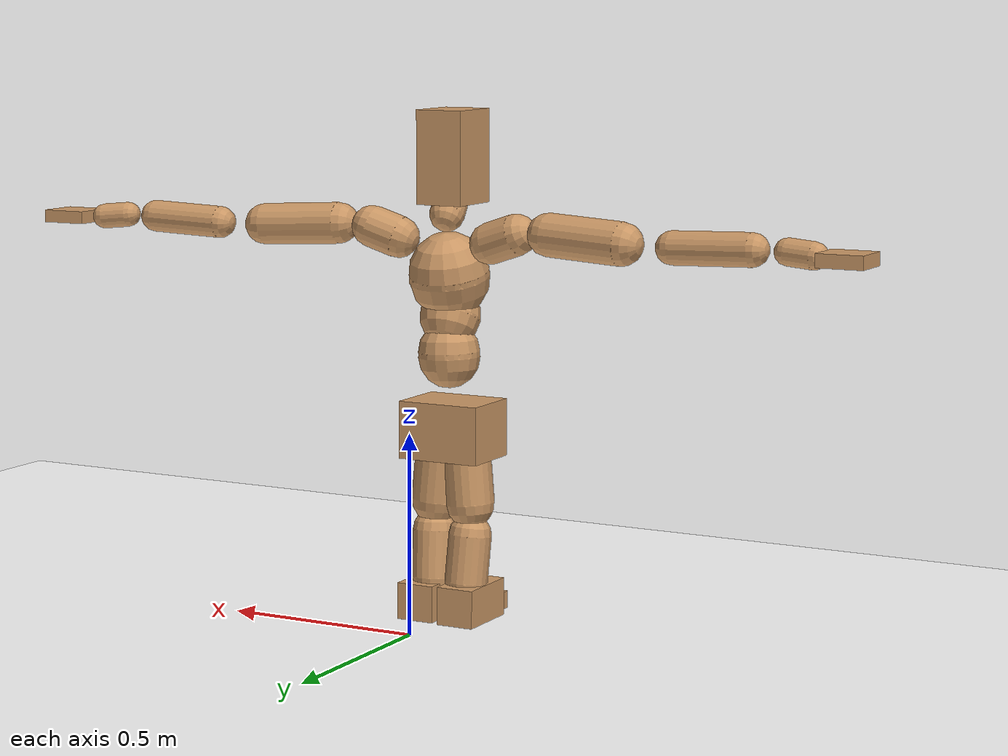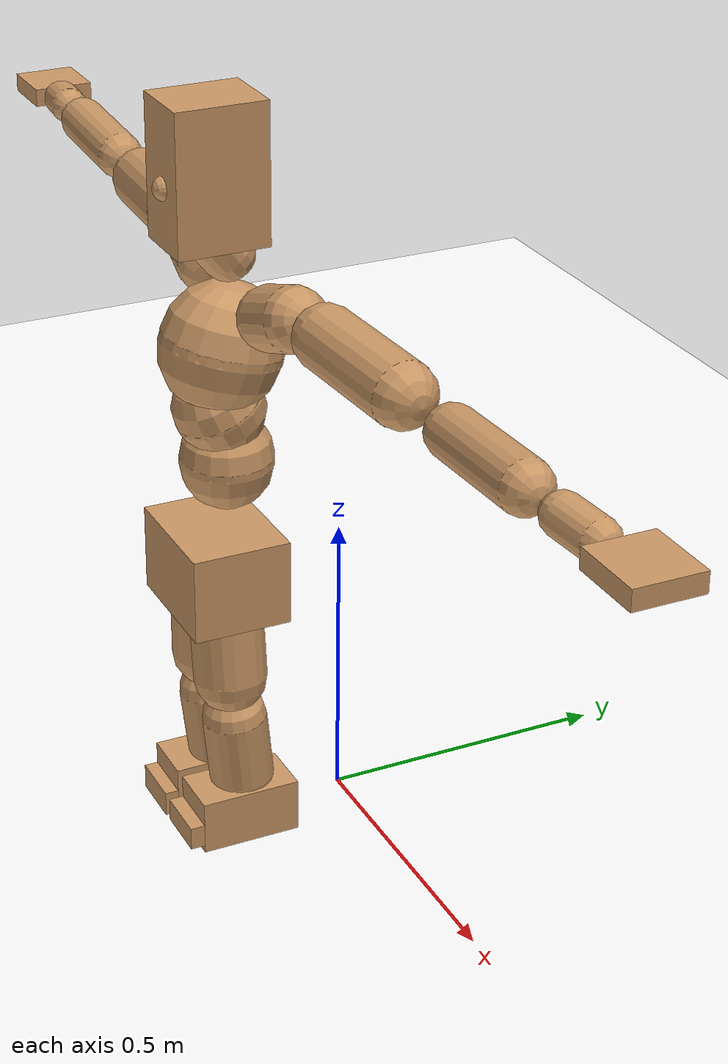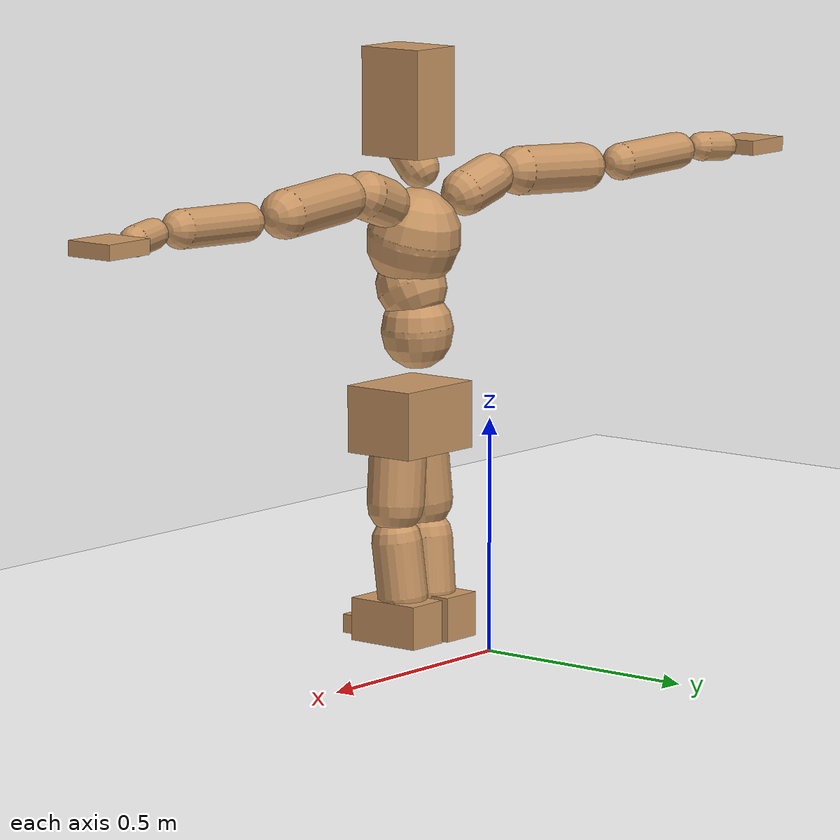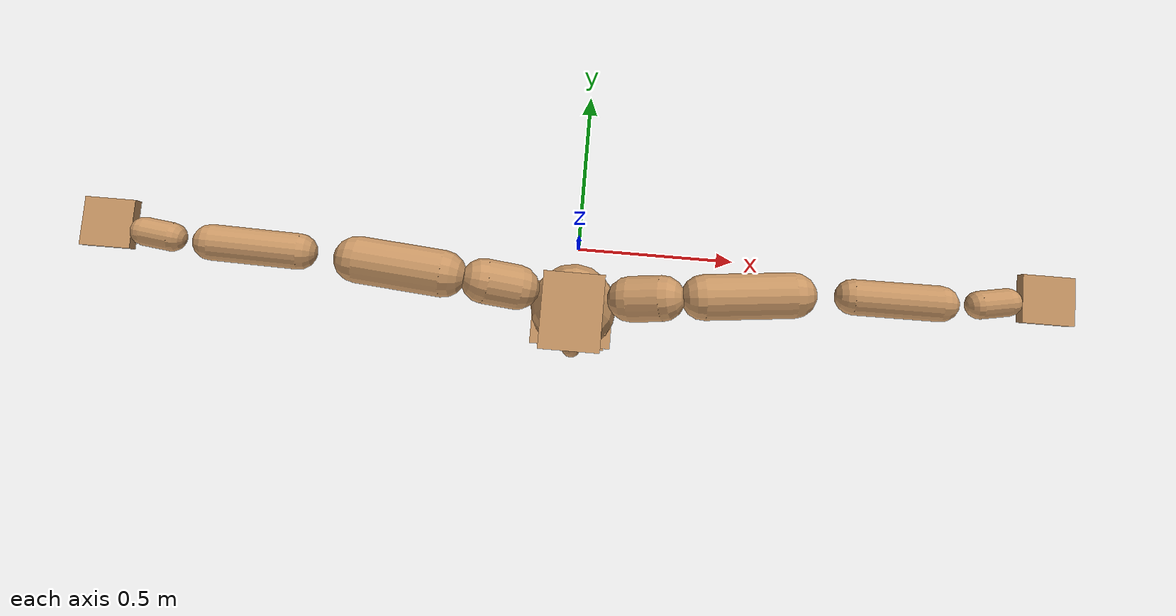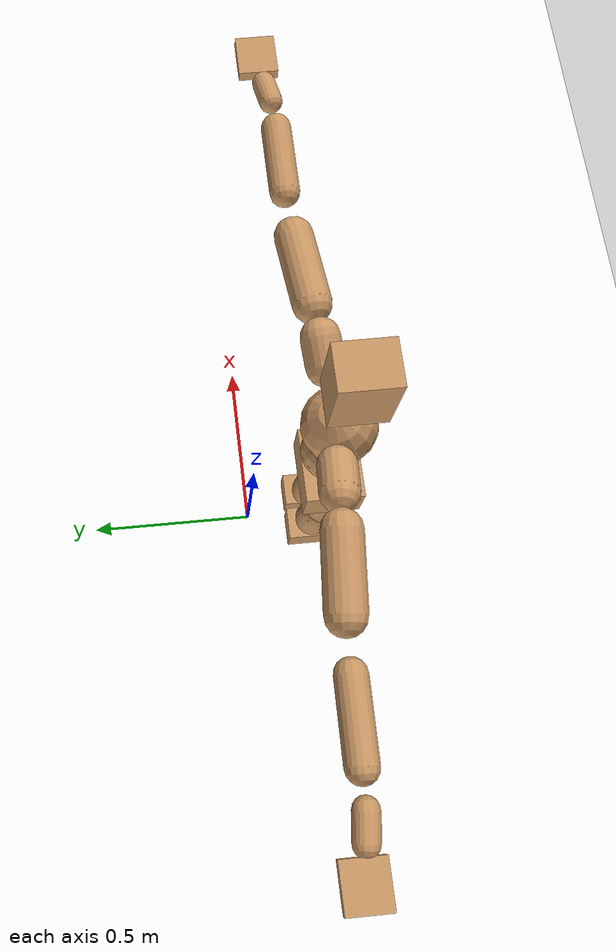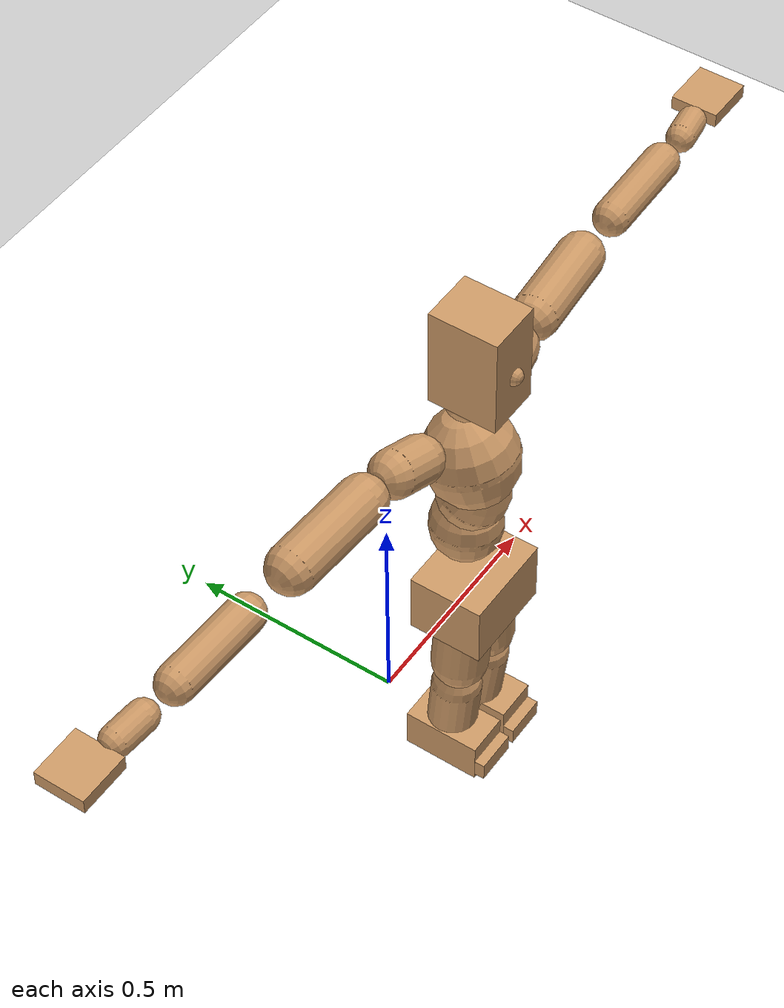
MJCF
<mujoco model="humanoid">
  <option integrator="implicitfast" />

  <visual>
    <global offwidth="1280" offheight="960" />
    <headlight active="1" ambient="0.34 0.34 0.34" diffuse="0.5 0.5 0.5" />
  </visual>

  <default>
    <joint damping="2" stiffness="2" armature="0.01" limited="true" solimplimit="0 .99 .01" />
    <geom condim="1" friction="0.7 0.005 0.0001" solimp=".99 .99 .003" solref="0.015 1" margin="0.001" rgba="0.8 0.6 .4 1" />
    <default class="smplcontact">
      <geom condim="3" friction="1. 0.005 0.0001" solref="0.015 1" solimp="0.98 0.98 0.001" priority="1" />
    </default>
    <default class="stiff_medium">
      <joint stiffness="10" />
    </default>
    <default class="stiff_medium_higher">
      <joint stiffness="50" />
    </default>
    <default class="stiff_high">
      <joint stiffness="100" />
    </default>
  </default>

  <asset>
    <texture type="skybox" builtin="gradient" rgb1="0.99 0.99 0.99" rgb2="0.608 0.828 0.892" width="100" />
    <texture builtin="flat" height="1278" mark="cross" markrgb="1 1 1" name="texgeom" random="0.01" rgb1="0.8 0.6 0.4" rgb2="0.8 0.6 0.4" type="cube" width="127" />
    <texture name="texplane" type="2d" builtin="checker" markrgb="1 1 1" rgb1="0.756 0.772 0.76" rgb2="0.6 0.6 0.6" width="100" height="100" />
    <material name="MatPlane" reflectance="0.5" texture="texplane" texrepeat="1 1" texuniform="true" />
    <material name="geom" texture="texgeom" texuniform="true" />
  </asset>

  <worldbody>
    <light name="tracking_light" pos="0 0 7" dir="0 0 -1" directional="true" cutoff="100" exponent="1" diffuse="1 1 1" specular="0.1 0.1 0.1" mode="trackcom" />
    <camera name="back" pos="0 3 2.4" xyaxes="-1 0 0 0 -1 2" mode="trackcom" />
    <camera name="side" pos="-3 0 2.4" xyaxes="0 -1 0 1 0 2" mode="trackcom" />
    <camera name="front_side" pos="-2.8 -2.8 0.8" xyaxes="0.5 -0.5 0 0.1 0.1 1" mode="trackcom" />
    <geom condim="3" name="floor" pos="0 0 0" rgba="1 1 1 1" size="100 100 .2" type="plane" material="MatPlane" />
    <body name="Pelvis" pos="-0.0018 -0.2233 0.49225" euler="90 0 0">
      <site name="Pelvis" size="0.01" />
      <freejoint name="Pelvis" />
      <geom type="box" pos="-0.0000 -0.0121 -0.0055" size="0.1069 0.0722 0.083" quat="1.0000 0.0000 0.0000 0.0000" density="3165.830099" name="Pelvis" />
      <body name="L_Hip" pos="0.03475 -0.0457 -0.0034">
        <joint name="L_Hip_x" type="hinge" pos="0 0 0" axis="1 0 0" stiffness="3.3281267346938783" range="-160.0 22.92" class="stiff_medium" damping="3.7390012674465343" armature="0.001866933509102773"/>
        <joint name="L_Hip_y" type="hinge" pos="0 0 0" axis="0 1 0" stiffness="3.37791" range="-70.0 70.0" class="stiff_medium" damping="4.005630916019097" armature="0.004750001934737157"/>
        <joint name="L_Hip_z" type="hinge" pos="0 0 0" axis="0 0 1" stiffness="3.3736477551020405" range="-28.65 90.0" class="stiff_medium" damping="2.5063841398267135" armature="0.0018620679787552058"/>
        <geom type="capsule" density="2040.816327" fromto="0.00345 -0.0375 -0.00045 0.0137 -0.1501 -0.0018" size="0.0615" name="L_Hip" />
        <body name="L_Knee" pos="0.01715 -0.1876 -0.00225">
          <joint name="L_Knee_x" type="hinge" pos="0 0 0" axis="1 0 0" range="-5.16 171.89" damping="2.234113816312469" armature="0.0021582150618351227" stiffness="0.7227130408163265"/>
          <joint name="L_Knee_y" type="hinge" pos="0 0 0" axis="0 1 0" range="-4.58 6.88" damping="3.459125898584501" armature="0.005422024016158547" stiffness="0.6896382205818496"/>
          <joint name="L_Knee_z" type="hinge" pos="0 0 0" axis="0 0 1" range="-6.88 4.58" damping="2.2483389527020097" armature="0.002131189565119331" stiffness="0.7412274770408163"/>
          <geom type="capsule" density="1234.567901" fromto="-0.00135 -0.0398 -0.00435 -0.00545 -0.1592 -0.0175" size="0.0541" name="L_Knee" />
          <body name="L_Ankle" pos="-0.0068 -0.199 -0.02185">
            <joint name="L_Ankle_x" type="hinge" pos="0 0 0" axis="1 0 0" range="-45.84 45.84" class="stiff_medium" damping="3.0200432285450947" armature="0.005067033945711711" stiffness="5.0"/>
            <joint name="L_Ankle_y" type="hinge" pos="0 0 0" axis="0 1 0" range="-74.48 22.92" class="stiff_medium" damping="1.5371232923821347" armature="0.005250551146630429" stiffness="5.0"/>
            <joint name="L_Ankle_z" type="hinge" pos="0 0 0" axis="0 0 1" range="-4.58 4.58" class="stiff_medium" damping="3.4078637028280743" armature="0.006451963898362818" stiffness="5.0"/>
            <geom type="box" pos="0.01165 -0.01195 0.0121" size="0.0483 0.0464 0.085" quat="1.0000 0.0000 0.0000 0.0000" density="449.071558" name="L_Ankle" class="smplcontact" />
            <body name="L_Toe" pos="0.0132 -0.0279 0.05965">
              <joint name="L_Toe_x" type="hinge" pos="0 0 0" axis="1 0 0" range="-91.67 22.92" armature="0.00714859066429149" damping="1.195708213929426" stiffness="1.0"/>
              <joint name="L_Toe_y" type="hinge" pos="0 0 0" axis="0 1 0" range="-4.58 4.58" armature="0.007990951927082678" damping="1.2641955487251706" stiffness="1.0"/>
              <joint name="L_Toe_z" type="hinge" pos="0 0 0" axis="0 0 1" range="-4.58 4.58" armature="0.00969416106055905" damping="1.392419553192144" stiffness="1.0"/>
              <geom type="box" pos="-0.0015 0.00275 0.0124" size="0.0478 0.02 0.0496" quat="1.0000 0.0000 0.0000 0.0000" density="423.206892" name="L_Toe" class="smplcontact" />
            </body>
          </body>
        </body>
      </body>
      <body name="R_Hip" pos="-0.03385 -0.04525 -0.00215">
        <joint name="R_Hip_x" type="hinge" pos="0 0 0" axis="1 0 0" stiffness="3.3281267346938783" range="-160.0 22.92" class="stiff_medium" damping="3.7390012674465343" armature="0.001866933509102773"/>
        <joint name="R_Hip_y" type="hinge" pos="0 0 0" axis="0 1 0" stiffness="3.37791" range="-70.0 70.0" class="stiff_medium" damping="4.005630916019097" armature="0.004750001934737157"/>
        <joint name="R_Hip_z" type="hinge" pos="0 0 0" axis="0 0 1" stiffness="3.3736477551020405" range="-90.0 28.65" class="stiff_medium" damping="2.5063841398267135" armature="0.0018620679787552058"/>
        <geom type="capsule" density="2040.816327" fromto="-0.00385 -0.03825 -0.0009 -0.0153 -0.15305 -0.00355" size="0.0606" name="R_Hip" />
        <body name="R_Knee" pos="-0.01915 -0.1913 -0.00445">
          <joint name="R_Knee_x" type="hinge" pos="0 0 0" axis="1 0 0" range="-5.16 171.89" damping="2.234113816312469" armature="0.0021582150618351227" stiffness="0.7227130408163265"/>
          <joint name="R_Knee_y" type="hinge" pos="0 0 0" axis="0 1 0" range="-6.88 4.58" damping="3.459125898584501" armature="0.005422024016158547" stiffness="0.6896382205818496"/>
          <joint name="R_Knee_z" type="hinge" pos="0 0 0" axis="0 0 1" range="-4.58 6.88" damping="2.2483389527020097" armature="0.002131189565119331" stiffness="0.7412274770408163"/>
          <geom type="capsule" density="1234.567901" fromto="0.0016 -0.03985 -0.00425 0.0063 -0.15935 -0.0169" size="0.0541" name="R_Knee" />
          <body name="R_Ankle" pos="0.0079 -0.1992 -0.02115">
            <joint name="R_Ankle_x" type="hinge" pos="0 0 0" axis="1 0 0" range="-45.84 45.84" class="stiff_medium" damping="3.0200432285450947" armature="0.005067033945711711" stiffness="5.0"/>
            <joint name="R_Ankle_y" type="hinge" pos="0 0 0" axis="0 1 0" range="-22.92 74.48" class="stiff_medium" damping="1.5371232923821347" armature="0.005250551146630429" stiffness="5.0"/>
            <joint name="R_Ankle_z" type="hinge" pos="0 0 0" axis="0 0 1" range="-4.58 4.58" class="stiff_medium" damping="3.4078637028280743" armature="0.006451963898362818" stiffness="5.0"/>
            <geom type="box" pos="-0.0106 -0.0087 0.0128" size="0.0483 0.0478 0.0865" quat="1.0000 0.0000 0.0000 0.0000" density="434.700981" name="R_Ankle" class="smplcontact" />
            <body name="R_Toe" pos="-0.0127 -0.02405 0.06165">
              <joint name="R_Toe_x" type="hinge" pos="0 0 0" axis="1 0 0" range="-91.67 22.92" armature="0.00714859066429149" damping="1.195708213929426" stiffness="1.0"/>
              <joint name="R_Toe_y" type="hinge" pos="0 0 0" axis="0 1 0" range="-4.58 4.58" armature="0.007990951927082678" damping="1.2641955487251706" stiffness="1.0"/>
              <joint name="R_Toe_z" type="hinge" pos="0 0 0" axis="0 0 1" range="-4.58 4.58" armature="0.00969416106055905" damping="1.392419553192144" stiffness="1.0"/>
              <geom type="box" pos="0.0021 0.00225 0.01135" size="0.0479 0.0216 0.0493" quat="1.0000 0.0000 0.0000 0.0000" density="407.384095" name="R_Toe" class="smplcontact" />
            </body>
          </body>
        </body>
      </body>
      <body name="Torso" pos="-0.0025 0.109 -0.0267">
        <joint name="Torso_x" type="hinge" pos="0 0 0" axis="1 0 0" range="-25.78 57.3" class="stiff_medium" damping="16.94478917737133" armature="0.011576079564418838" stiffness="11.023723673469387"/>
        <joint name="Torso_y" type="hinge" pos="0 0 0" axis="0 1 0" range="-57.3 57.3" class="stiff_high" damping="29.11508756713538" armature="0.01937626790595332" stiffness="109.37198124999998"/>
        <joint name="Torso_z" type="hinge" pos="0 0 0" axis="0 0 1" range="-34.38 34.38" class="stiff_high" damping="24.640771515328712" armature="0.014228244849331773" stiffness="106.68350652173912"/>
        <geom type="capsule" density="2040.816327" fromto="0.0025 0.0608 0.0005 0.003 0.0743 0.0006" size="0.0769" name="Torso" />
        <body name="Spine" pos="0.0055 0.1352 0.0011">
          <joint name="Spine_x" type="hinge" pos="0 0 0" axis="1 0 0" stiffness="11.23382224489796" range="-25.78 57.3" class="stiff_medium" damping="17.411062309630793" armature="0.01199334905851537"/>
          <joint name="Spine_y" type="hinge" pos="0 0 0" axis="0 1 0" stiffness="11.67224088888889" range="-57.3 57.3" class="stiff_high" damping="12.051053820080998" armature="0.019440876268553408"/>
          <joint name="Spine_z" type="hinge" pos="0 0 0" axis="0 0 1" stiffness="22.9563125" range="-34.38 34.38" class="stiff_high" damping="16.317554444807215" armature="0.016109257231005373"/>
          <geom type="capsule" density="2040.816327" fromto="0.0007 0.0238 0.0114 0.0008 0.0291 0.014" size="0.0755" name="Spine" />
          <body name="Chest" pos="0.0015 0.0529 0.0254">
            <joint name="Chest_x" type="hinge" pos="0 0 0" axis="1 0 0" stiffness="11.776115531914895" range="-25.78 57.3" class="stiff_medium" damping="18.021102303759772" armature="0.012256829035287799"/>
            <joint name="Chest_y" type="hinge" pos="0 0 0" axis="0 1 0" stiffness="13.448267333333334" range="-57.3 57.3" class="stiff_high" damping="12.937740431789003" armature="0.019447803587290643"/>
            <joint name="Chest_z" type="hinge" pos="0 0 0" axis="0 0 1" stiffness="23.267014782608697" range="-34.38 34.38" class="stiff_high" damping="16.847528832624963" armature="0.016943348915127984"/>
            <geom type="capsule" density="2040.816327" fromto="-0.0009 0.0682 -0.0173 -0.001 0.0833 -0.0212" size="0.1002" name="Chest" />
            <body name="Neck" pos="-0.0028 0.2139 -0.0429">
              <joint name="Neck_x" type="hinge" pos="0 0 0" axis="1 0 0" range="-28.65 57.3" class="stiff_medium_higher" damping="9.999999999999998" armature="0.009999999999999995" stiffness="50.0"/>
              <joint name="Neck_y" type="hinge" pos="0 0 0" axis="0 1 0" range="-40.11 40.11" class="stiff_medium_higher" damping="10.0" armature="0.01" stiffness="50.0"/>
              <joint name="Neck_z" type="hinge" pos="0 0 0" axis="0 0 1" range="-40.11 40.11" class="stiff_medium_higher" damping="9.999999999999996" armature="0.009999999999999993" stiffness="50.0"/>
              <geom type="capsule" density="1000" fromto="0.001 0.013 0.0103 0.0041 0.052 0.0411" size="0.0436" name="Neck" />
              <body name="Head" pos="0.0052 0.065 0.0513">
                <joint name="Head_x" type="hinge" pos="0 0 0" axis="1 0 0" range="-28.65 57.3" class="stiff_medium_higher" damping="1.9999999999999978" armature="0.009999999999999978" stiffness="50.0"/>
                <joint name="Head_y" type="hinge" pos="0 0 0" axis="0 1 0" range="-40.11 40.11" class="stiff_medium_higher" damping="2.0" armature="0.01" stiffness="50.0"/>
                <joint name="Head_z" type="hinge" pos="0 0 0" axis="0 0 1" range="-40.11 40.11" class="stiff_medium_higher" damping="1.9999999999999982" armature="0.009999999999999983" stiffness="50.0"/>
                <geom type="box" pos="-0.0042 0.0876 -0.0116" size="0.0606 0.1154 0.076" quat="1.0000 0.0000 0.0000 0.0000" density="1018.069894" name="Head" />
                <geom type="capsule" name="nose" size="0.02 0.01" pos="0 0.07 0.05" quat="1 0 0 0" mass="0" contype="0" conaffinity="0" />
              </body>
            </body>
            <body name="L_Thorax" pos="0.10244 0.15821 -0.04433">
              <joint name="L_Thorax_x" type="hinge" pos="0 0 0" axis="1 0 0" range="-10.89 4.58" class="stiff_medium_higher" damping="31.589735797957864" armature="0.016223873504270316" stiffness="76.88603214285715"/>
              <joint name="L_Thorax_y" type="hinge" pos="0 0 0" axis="0 1 0" range="-28.65 17.19" class="stiff_medium_higher" damping="34.89989559971406" armature="0.01967496307175568" stiffness="77.38278265306123"/>
              <joint name="L_Thorax_z" type="hinge" pos="0 0 0" axis="0 0 1" range="-31.51 40.11" class="stiff_medium_higher" damping="34.901462278801546" armature="0.019678125977203684" stiffness="77.37729132653061"/>
              <geom type="capsule" density="1000" fromto="0.02366 0.00793 -0.00234 0.09464 0.03172 -0.00923" size="0.0521" name="L_Thorax" />
              <body name="L_Shoulder" pos="0.1183 0.03965 -0.01157">
                <joint name="L_Shoulder_x" type="hinge" pos="0 0 0" axis="1 0 0" range="-97.4 97.4" class="stiff_medium" damping="9.029989056679021" armature="0.014800063709014101" stiffness="15.304120000000001"/>
                <joint name="L_Shoulder_y" type="hinge" pos="0 0 0" axis="0 1 0" range="-108.86 80.21" class="stiff_medium" damping="10.416659800941959" armature="0.01952172196852091" stiffness="15.439610408163267"/>
                <joint name="L_Shoulder_z" type="hinge" pos="0 0 0" axis="0 0 1" range="-97.4 85.94" class="stiff_medium" damping="10.414978319288076" armature="0.019525527681653106" stiffness="15.431617857142857"/>
                <geom type="capsule" density="1000" fromto="0.06747 -0.00338 -0.00715 0.27001 -0.01326 -0.0286" size="0.0517" name="L_Shoulder" />
                <body name="L_Elbow" pos="0.33748 -0.01664 -0.03575">
                  <joint name="L_Elbow_x" type="hinge" pos="0 0 0" axis="1 0 0" range="-17.19 4.58" damping="6.893935965131517" armature="0.0126553540530317" stiffness="3.0043475918367353"/>
                  <joint name="L_Elbow_y" type="hinge" pos="0 0 0" axis="0 1 0" range="-180.0 17.19" damping="8.400044856786579" armature="0.01878090142426551" stiffness="3.005638632653061"/>
                  <joint name="L_Elbow_z" type="hinge" pos="0 0 0" axis="0 0 1" range="-100.84 4.58" damping="8.401427491655669" armature="0.018800821954664856" stiffness="3.003442469387755"/>
                  <geom type="capsule" density="1000" fromto="0.06474 0.00234 -0.00026 0.25922 0.00936 -0.00117" size="0.0405" name="L_Elbow" />
                  <body name="L_Wrist" pos="0.32396 0.0117 -0.00156">
                    <joint name="L_Wrist_x" type="hinge" pos="0 0 0" axis="1 0 0" range="-180.0 22.92" armature="0.012290327941728303" damping="2.5957833940279276" stiffness="2.7412171020408165"/>
                    <joint name="L_Wrist_y" type="hinge" pos="0 0 0" axis="0 1 0" range="-17.19 17.19" armature="0.016530608092611625" damping="3.02180641276124" stiffness="2.7619413469387752"/>
                    <joint name="L_Wrist_z" type="hinge" pos="0 0 0" axis="0 0 1" range="-22.92 22.92" armature="0.016761001490566044" damping="3.038183618728785" stiffness="2.7535823877551024"/>
                    <geom type="capsule" density="1000" fromto="0.02184 -0.00208 -0.0039 0.08736 -0.00845 -0.0156" size="0.0318" name="L_Wrist" class="smplcontact" />
                    <body name="L_Hand" pos="0.1092 -0.01066 -0.01937">
                      <joint name="L_Hand_x" type="hinge" pos="0 0 0" axis="1 0 0" range="-17.19 17.19" armature="0.01030060650759187" damping="2.314371487887753" stiffness="2.5999999999999996"/>
                      <joint name="L_Hand_y" type="hinge" pos="0 0 0" axis="0 1 0" range="-51.57 51.57" armature="0.013635420978089964" damping="2.662784052191762" stiffness="2.5999999999999996"/>
                      <joint name="L_Hand_z" type="hinge" pos="0 0 0" axis="0 0 1" range="-91.67 91.67" armature="0.01452436133904224" damping="2.7482117633657643" stiffness="2.5999999999999996"/>
                      <geom type="box" pos="0.06409 0.0013 -0.00754" size="0.0585 0.0158 0.0538" quat="1.0000 0.0000 0.0000 0.0000" density="400.552564" name="L_Hand" class="smplcontact" />
                    </body>
                  </body>
                </body>
              </body>
            </body>
            <body name="R_Thorax" pos="-0.10634 0.15444 -0.05018">
              <joint name="R_Thorax_x" type="hinge" pos="0 0 0" axis="1 0 0" range="-10.89 4.58" class="stiff_medium_higher" damping="31.589735797957864" armature="0.016223873504270316" stiffness="76.88603214285715"/>
              <joint name="R_Thorax_y" type="hinge" pos="0 0 0" axis="0 1 0" range="-17.19 28.65" class="stiff_medium_higher" damping="34.89989559971406" armature="0.01967496307175568" stiffness="77.38278265306123"/>
              <joint name="R_Thorax_z" type="hinge" pos="0 0 0" axis="0 0 1" range="-40.11 31.51" class="stiff_medium_higher" damping="34.901462278801546" armature="0.019678125977203684" stiffness="77.37729132653061"/>
              <geom type="capsule" density="1000" fromto="-0.02496 0.00845 -0.00234 -0.09984 0.0338 -0.00949" size="0.0511" name="R_Thorax" />
              <body name="R_Shoulder" pos="-0.1248 0.04238 -0.01183">
                <joint name="R_Shoulder_x" type="hinge" pos="0 0 0" axis="1 0 0" range="-97.4 97.4" class="stiff_medium" damping="9.029989056679021" armature="0.014800063709014101" stiffness="15.304120000000001"/>
                <joint name="R_Shoulder_y" type="hinge" pos="0 0 0" axis="0 1 0" range="-80.21 108.86" class="stiff_medium" damping="10.416659800941959" armature="0.01952172196852091" stiffness="15.439610408163267"/>
                <joint name="R_Shoulder_z" type="hinge" pos="0 0 0" axis="0 0 1" range="-85.94 97.4" class="stiff_medium" damping="10.414978319288076" armature="0.019525527681653106" stiffness="15.431617857142857"/>
                <geom type="capsule" density="1000" fromto="-0.06591 -0.00351 -0.00559 -0.2639 -0.01391 -0.02223" size="0.0531" name="R_Shoulder" />
                <body name="R_Elbow" pos="-0.32981 -0.01729 -0.02782">
                  <joint name="R_Elbow_x" type="hinge" pos="0 0 0" axis="1 0 0" range="-17.19 4.58" damping="6.893935965131517" armature="0.0126553540530317" stiffness="3.0043475918367353"/>
                  <joint name="R_Elbow_y" type="hinge" pos="0 0 0" axis="0 1 0" range="-17.19 180.0" damping="8.400044856786579" armature="0.01878090142426551" stiffness="3.005638632653061"/>
                  <joint name="R_Elbow_z" type="hinge" pos="0 0 0" axis="0 0 1" range="-4.58 100.84" damping="8.401427491655669" armature="0.018800821954664856" stiffness="3.003442469387755"/>
                  <geom type="capsule" density="1000" fromto="-0.06643 0.00208 -0.00143 -0.26546 0.00806 -0.00572" size="0.0408" name="R_Elbow" />
                  <body name="R_Wrist" pos="-0.33189 0.01014 -0.00728">
                    <joint name="R_Wrist_x" type="hinge" pos="0 0 0" axis="1 0 0" range="-180.0 22.92" armature="0.012290327941728303" damping="2.5957833940279276" stiffness="2.7412171020408165"/>
                    <joint name="R_Wrist_y" type="hinge" pos="0 0 0" axis="0 1 0" range="-17.19 17.19" armature="0.016530608092611625" damping="3.02180641276124" stiffness="2.7619413469387752"/>
                    <joint name="R_Wrist_z" type="hinge" pos="0 0 0" axis="0 0 1" range="-22.92 22.92" armature="0.016761001490566044" damping="3.038183618728785" stiffness="2.7535823877551024"/>
                    <geom type="capsule" density="1000" fromto="-0.02197 -0.00156 -0.00273 -0.08801 -0.00637 -0.01079" size="0.0326" name="R_Wrist" class="smplcontact" />
                    <body name="R_Hand" pos="-0.10998 -0.00793 -0.01339">
                      <joint name="R_Hand_x" type="hinge" pos="0 0 0" axis="1 0 0" range="-17.19 17.19" armature="0.01030060650759187" damping="2.314371487887753" stiffness="2.5999999999999996"/>
                      <joint name="R_Hand_y" type="hinge" pos="0 0 0" axis="0 1 0" range="-51.57 51.57" armature="0.013635420978089964" damping="2.662784052191762" stiffness="2.5999999999999996"/>
                      <joint name="R_Hand_z" type="hinge" pos="0 0 0" axis="0 0 1" range="-91.67 91.67" armature="0.01452436133904224" damping="2.7482117633657643" stiffness="2.5999999999999996"/>
                      <geom type="box" pos="-0.06006 -0.00117 -0.01027" size="0.0569 0.0164 0.0546" quat="1.0000 0.0000 0.0000 0.0000" density="403.679611" name="R_Hand" class="smplcontact" />
                    </body>
                  </body>
                </body>
              </body>
            </body>
          </body>
        </body>
      </body>
    </body>
  </worldbody>
  <actuator>
    <general name="L_Hip_x" joint="L_Hip_x" biastype="affine" gainprm="95.62708680036044" biasprm="-71.66280919852072 -59.9062812244898 -0.4985335023262046" ctrllimited="true" ctrlrange="-1 1" forcerange="-119.8125624489796 119.8125624489796" />
    <general name="L_Hip_y" joint="L_Hip_y" biastype="affine" gainprm="74.28412068341248" biasprm="0.0 -60.80238 -0.8011261832038195" ctrllimited="true" ctrlrange="-1 1" forcerange="-121.60476 121.60476" />
    <general name="L_Hip_z" joint="L_Hip_z" biastype="affine" gainprm="62.8763546966517" biasprm="32.51128833240271 -60.72565959183673 -0.5012768279653427" ctrllimited="true" ctrlrange="-1 1" forcerange="-121.45131918367346 121.45131918367346" />
    <general name="L_Knee_x" joint="L_Knee_x" biastype="affine" gainprm="100.49667747567948" biasprm="94.63886492809961 -65.04417367346939 -0.5585284540781172" ctrllimited="true" ctrlrange="-1 1" forcerange="-130.08834734693878 130.08834734693878" />
    <general name="L_Knee_y" joint="L_Knee_y" biastype="affine" gainprm="6.207201182643047" biasprm="1.2457733612634387 -62.06743985236647 -0.8647814746461252" ctrllimited="true" ctrlrange="-1 1" forcerange="-124.13487970473294 124.13487970473294" />
    <general name="L_Knee_z" joint="L_Knee_z" biastype="affine" gainprm="6.671538692002082" biasprm="-1.3389650079934372 -66.71047293367346 -0.5620847381755024" ctrllimited="true" ctrlrange="-1 1" forcerange="-133.42094586734692 133.42094586734692" />
    <general name="L_Ankle_x" joint="L_Ankle_x" biastype="affine" gainprm="36.002651810139035" biasprm="0.0 -45.0 -1.0066810761816982" ctrllimited="true" ctrlrange="-1 1" forcerange="-90.0 90.0" />
    <general name="L_Ankle_y" joint="L_Ankle_y" biastype="affine" gainprm="38.24889055745574" biasprm="-20.24756465238622 -45.0 -1.0247488615880898" ctrllimited="true" ctrlrange="-1 1" forcerange="-90.0 90.0" />
    <general name="L_Ankle_z" joint="L_Ankle_z" biastype="affine" gainprm="3.5971235883603128" biasprm="0.0 -45.0 -1.135954567609358" ctrllimited="true" ctrlrange="-1 1" forcerange="-90.0 90.0" />
    <general name="L_Toe_x" joint="L_Toe_x" biastype="affine" gainprm="35.99951021748544" biasprm="-21.598449493429825 -36.0 -0.4782832855717704" ctrllimited="true" ctrlrange="-1 1" forcerange="-72.0 72.0" />
    <general name="L_Toe_y" joint="L_Toe_y" biastype="affine" gainprm="2.8776988706882505" biasprm="0.0 -36.0 -0.5056782194900683" ctrllimited="true" ctrlrange="-1 1" forcerange="-72.0 72.0" />
    <general name="L_Toe_z" joint="L_Toe_z" biastype="affine" gainprm="2.8776988706882505" biasprm="0.0 -36.0 -0.5569678212768576" ctrllimited="true" ctrlrange="-1 1" forcerange="-72.0 72.0" />
    <general name="R_Hip_x" joint="R_Hip_x" biastype="affine" gainprm="95.62708680036044" biasprm="-71.66280919852072 -59.9062812244898 -0.4985335023262046" ctrllimited="true" ctrlrange="-1 1" forcerange="-119.8125624489796 119.8125624489796" />
    <general name="R_Hip_y" joint="R_Hip_y" biastype="affine" gainprm="74.28412068341248" biasprm="0.0 -60.80238 -0.8011261832038195" ctrllimited="true" ctrlrange="-1 1" forcerange="-121.60476 121.60476" />
    <general name="R_Hip_z" joint="R_Hip_z" biastype="affine" gainprm="62.8763546966517" biasprm="-32.51128833240271 -60.72565959183673 -0.5012768279653427" ctrllimited="true" ctrlrange="-1 1" forcerange="-121.45131918367346 121.45131918367346" />
    <general name="R_Knee_x" joint="R_Knee_x" biastype="affine" gainprm="100.49667747567948" biasprm="94.63886492809961 -65.04417367346939 -0.5585284540781172" ctrllimited="true" ctrlrange="-1 1" forcerange="-130.08834734693878 130.08834734693878" />
    <general name="R_Knee_y" joint="R_Knee_y" biastype="affine" gainprm="6.207201182643047" biasprm="-1.2457733612634387 -62.06743985236647 -0.8647814746461252" ctrllimited="true" ctrlrange="-1 1" forcerange="-124.13487970473294 124.13487970473294" />
    <general name="R_Knee_z" joint="R_Knee_z" biastype="affine" gainprm="6.671538692002082" biasprm="1.3389650079934372 -66.71047293367346 -0.5620847381755024" ctrllimited="true" ctrlrange="-1 1" forcerange="-133.42094586734692 133.42094586734692" />
    <general name="R_Ankle_x" joint="R_Ankle_x" biastype="affine" gainprm="36.002651810139035" biasprm="0.0 -45.0 -1.0066810761816982" ctrllimited="true" ctrlrange="-1 1" forcerange="-90.0 90.0" />
    <general name="R_Ankle_y" joint="R_Ankle_y" biastype="affine" gainprm="38.24889055745574" biasprm="20.24756465238622 -45.0 -1.0247488615880898" ctrllimited="true" ctrlrange="-1 1" forcerange="-90.0 90.0" />
    <general name="R_Ankle_z" joint="R_Ankle_z" biastype="affine" gainprm="3.5971235883603128" biasprm="0.0 -45.0 -1.135954567609358" ctrllimited="true" ctrlrange="-1 1" forcerange="-90.0 90.0" />
    <general name="R_Toe_x" joint="R_Toe_x" biastype="affine" gainprm="35.99951021748544" biasprm="-21.598449493429825 -36.0 -0.4782832855717704" ctrllimited="true" ctrlrange="-1 1" forcerange="-72.0 72.0" />
    <general name="R_Toe_y" joint="R_Toe_y" biastype="affine" gainprm="2.8776988706882505" biasprm="0.0 -36.0 -0.5056782194900683" ctrllimited="true" ctrlrange="-1 1" forcerange="-72.0 72.0" />
    <general name="R_Toe_z" joint="R_Toe_z" biastype="affine" gainprm="2.8776988706882505" biasprm="0.0 -36.0 -0.5569678212768576" ctrllimited="true" ctrlrange="-1 1" forcerange="-72.0 72.0" />
    <general name="Torso_x" joint="Torso_x" biastype="affine" gainprm="191.81537709933156" biasprm="72.77347961207185 -264.5693681632653 -4.518610447299022" ctrllimited="true" ctrlrange="-1 1" forcerange="-396.85405224489796 396.85405224489796" />
    <general name="Torso_y" joint="Torso_y" biastype="affine" gainprm="262.51209058192023" biasprm="0.0 -262.492755 -5.823017513427076" ctrllimited="true" ctrlrange="-1 1" forcerange="-393.7391324999999 393.7391324999999" />
    <general name="Torso_z" joint="Torso_z" biastype="affine" gainprm="153.63556556747483" biasprm="0.0 -256.0404156521739 -4.928154303065742" ctrllimited="true" ctrlrange="-1 1" forcerange="-384.0606234782608 384.0606234782608" />
    <general name="Spine_x" joint="Spine_x" biastype="affine" gainprm="195.47114151254812" biasprm="74.16045234082229 -269.61173387755105 -4.642949949234878" ctrllimited="true" ctrlrange="-1 1" forcerange="-404.41760081632657 404.41760081632657" />
    <general name="Spine_y" joint="Spine_y" biastype="affine" gainprm="280.1544163778229" biasprm="0.0 -280.13378133333333 -6.025526910040499" ctrllimited="true" ctrlrange="-1 1" forcerange="-420.200672 420.200672" />
    <general name="Spine_z" joint="Spine_z" biastype="affine" gainprm="165.29762515644848" biasprm="0.0 -275.47575 -5.4391848149357385" ctrllimited="true" ctrlrange="-1 1" forcerange="-413.213625 413.213625" />
    <general name="Chest_x" joint="Chest_x" biastype="affine" gainprm="204.90717188021173" biasprm="77.74041956745634 -282.62677276595747 -4.8056272810026055" ctrllimited="true" ctrlrange="-1 1" forcerange="-423.94015914893623 423.94015914893623" />
    <general name="Chest_y" joint="Chest_y" biastype="affine" gainprm="322.78219083444463" biasprm="0.0 -322.758416 -6.468870215894501" ctrllimited="true" ctrlrange="-1 1" forcerange="-484.1376240000001 484.1376240000001" />
    <general name="Chest_z" joint="Chest_z" biastype="affine" gainprm="167.53484637592376" biasprm="0.0 -279.20417739130437 -5.615842944208321" ctrllimited="true" ctrlrange="-1 1" forcerange="-418.8062660869566 418.8062660869566" />
    <general name="Neck_x" joint="Neck_x" biastype="affine" gainprm="27.00198885760427" biasprm="9.000662952534757 -36.0 -0.7999999999999998" ctrllimited="true" ctrlrange="-1 1" forcerange="-72.0 72.0" />
    <general name="Neck_y" joint="Neck_y" biastype="affine" gainprm="25.20185626709732" biasprm="0.0 -36.0 -0.8" ctrllimited="true" ctrlrange="-1 1" forcerange="-72.0 72.0" />
    <general name="Neck_z" joint="Neck_z" biastype="affine" gainprm="25.20185626709732" biasprm="0.0 -36.0 -0.7999999999999998" ctrllimited="true" ctrlrange="-1 1" forcerange="-72.0 72.0" />
    <general name="Head_x" joint="Head_x" biastype="affine" gainprm="18.001325905069514" biasprm="6.000441968356505 -24.0 -0.7999999999999992" ctrllimited="true" ctrlrange="-1 1" forcerange="-48.0 48.0" />
    <general name="Head_y" joint="Head_y" biastype="affine" gainprm="16.801237511398213" biasprm="0.0 -24.0 -0.8" ctrllimited="true" ctrlrange="-1 1" forcerange="-48.0 48.0" />
    <general name="Head_z" joint="Head_z" biastype="affine" gainprm="16.801237511398213" biasprm="0.0 -24.0 -0.7999999999999994" ctrllimited="true" ctrlrange="-1 1" forcerange="-48.0 48.0" />
    <general name="L_Thorax_x" joint="L_Thorax_x" biastype="affine" gainprm="24.911299101430362" biasprm="-10.160975910150333 -184.52647714285715 -2.5271788638366295" ctrllimited="true" ctrlrange="-1 1" forcerange="-369.0529542857143 369.0529542857143" />
    <general name="L_Thorax_y" joint="L_Thorax_y" biastype="affine" gainprm="74.29294346554212" biasprm="-18.57323586638553 -185.71867836734694 -2.7919916479771247" ctrllimited="true" ctrlrange="-1 1" forcerange="-371.4373567346939 371.4373567346939" />
    <general name="L_Thorax_z" joint="L_Thorax_z" biastype="affine" gainprm="116.06638363736599" biasprm="13.937041319203399 -185.70549918367348 -2.7921169823041243" ctrllimited="true" ctrlrange="-1 1" forcerange="-371.41099836734696 371.41099836734696" />
    <general name="L_Shoulder_x" joint="L_Shoulder_x" biastype="affine" gainprm="124.8779970044095" biasprm="0.0 -73.459776 -2.4079970817810725" ctrllimited="true" ctrlrange="-1 1" forcerange="-146.919552 146.919552" />
    <general name="L_Shoulder_y" joint="L_Shoulder_y" biastype="affine" gainprm="122.27778721627745" biasprm="-18.528897253643354 -74.11012995918368 -2.7777759469178562" ctrllimited="true" ctrlrange="-1 1" forcerange="-148.22025991836736 148.22025991836736" />
    <general name="L_Shoulder_z" joint="L_Shoulder_z" biastype="affine" gainprm="118.51062714799397" biasprm="-7.40772219437119 -74.0717657142857 -2.777327551810154" ctrllimited="true" ctrlrange="-1 1" forcerange="-148.1435314285714 148.1435314285714" />
    <general name="L_Elbow_x" joint="L_Elbow_x" biastype="affine" gainprm="20.54747587592092" biasprm="-11.901868203737386 -108.15651330612246 -1.1030297544210428" ctrllimited="true" ctrlrange="-1 1" forcerange="-216.31302661224493 216.31302661224493" />
    <general name="L_Elbow_y" joint="L_Elbow_y" biastype="affine" gainprm="186.19650463217005" biasprm="-153.73321628461693 -108.20299077551019 -1.3440071770858526" ctrllimited="true" ctrlrange="-1 1" forcerange="-216.40598155102037 216.40598155102037" />
    <general name="L_Elbow_z" joint="L_Elbow_z" biastype="affine" gainprm="99.4700192692226" biasprm="-90.82701626688834 -108.12392889795919 -1.344228398664907" ctrllimited="true" ctrlrange="-1 1" forcerange="-216.24785779591838 216.24785779591838" />
    <general name="L_Wrist_x" joint="L_Wrist_x" biastype="affine" gainprm="29.125065357690858" biasprm="-22.545659700305933 -16.447302612244897 -1.0383133576111712" ctrllimited="true" ctrlrange="-1 1" forcerange="-32.894605224489794 32.894605224489794" />
    <general name="L_Wrist_y" joint="L_Wrist_y" biastype="affine" gainprm="4.971860631693158" biasprm="0.0 -16.571648081632652 -1.2087225651044962" ctrllimited="true" ctrlrange="-1 1" forcerange="-33.143296163265305 33.143296163265305" />
    <general name="L_Wrist_z" joint="L_Wrist_z" biastype="affine" gainprm="6.609084529125214" biasprm="0.0 -16.521494326530615 -1.2152734474915141" ctrllimited="true" ctrlrange="-1 1" forcerange="-33.04298865306123 33.04298865306123" />
    <general name="L_Hand_x" joint="L_Hand_x" biastype="affine" gainprm="4.680344735318074" biasprm="0.0 -15.599999999999998 -0.9257485951551012" ctrllimited="true" ctrlrange="-1 1" forcerange="-31.199999999999996 31.199999999999996" />
    <general name="L_Hand_y" joint="L_Hand_y" biastype="affine" gainprm="14.041034205954219" biasprm="0.0 -15.599999999999998 -1.0651136208767047" ctrllimited="true" ctrlrange="-1 1" forcerange="-31.199999999999996 31.199999999999996" />
    <general name="L_Hand_z" joint="L_Hand_z" biastype="affine" gainprm="24.959115874729946" biasprm="0.0 -15.599999999999998 -1.0992847053463057" ctrllimited="true" ctrlrange="-1 1" forcerange="-31.199999999999996 31.199999999999996" />
    <general name="R_Thorax_x" joint="R_Thorax_x" biastype="affine" gainprm="24.911299101430362" biasprm="-10.160975910150333 -184.52647714285715 -2.5271788638366295" ctrllimited="true" ctrlrange="-1 1" forcerange="-369.0529542857143 369.0529542857143" />
    <general name="R_Thorax_y" joint="R_Thorax_y" biastype="affine" gainprm="74.29294346554212" biasprm="18.57323586638552 -185.71867836734694 -2.7919916479771247" ctrllimited="true" ctrlrange="-1 1" forcerange="-371.4373567346939 371.4373567346939" />
    <general name="R_Thorax_z" joint="R_Thorax_z" biastype="affine" gainprm="116.06638363736599" biasprm="-13.937041319203399 -185.70549918367348 -2.7921169823041243" ctrllimited="true" ctrlrange="-1 1" forcerange="-371.41099836734696 371.41099836734696" />
    <general name="R_Shoulder_x" joint="R_Shoulder_x" biastype="affine" gainprm="124.8779970044095" biasprm="0.0 -73.459776 -2.4079970817810725" ctrllimited="true" ctrlrange="-1 1" forcerange="-146.919552 146.919552" />
    <general name="R_Shoulder_y" joint="R_Shoulder_y" biastype="affine" gainprm="122.27778721627745" biasprm="18.528897253643354 -74.11012995918368 -2.7777759469178562" ctrllimited="true" ctrlrange="-1 1" forcerange="-148.22025991836736 148.22025991836736" />
    <general name="R_Shoulder_z" joint="R_Shoulder_z" biastype="affine" gainprm="118.51062714799397" biasprm="7.407722194371173 -74.0717657142857 -2.777327551810154" ctrllimited="true" ctrlrange="-1 1" forcerange="-148.1435314285714 148.1435314285714" />
    <general name="R_Elbow_x" joint="R_Elbow_x" biastype="affine" gainprm="20.54747587592092" biasprm="-11.901868203737386 -108.15651330612246 -1.1030297544210428" ctrllimited="true" ctrlrange="-1 1" forcerange="-216.31302661224493 216.31302661224493" />
    <general name="R_Elbow_y" joint="R_Elbow_y" biastype="affine" gainprm="186.19650463217005" biasprm="153.73321628461693 -108.20299077551019 -1.3440071770858526" ctrllimited="true" ctrlrange="-1 1" forcerange="-216.40598155102037 216.40598155102037" />
    <general name="R_Elbow_z" joint="R_Elbow_z" biastype="affine" gainprm="99.4700192692226" biasprm="90.82701626688832 -108.12392889795919 -1.344228398664907" ctrllimited="true" ctrlrange="-1 1" forcerange="-216.24785779591838 216.24785779591838" />
    <general name="R_Wrist_x" joint="R_Wrist_x" biastype="affine" gainprm="29.125065357690858" biasprm="-22.545659700305933 -16.447302612244897 -1.0383133576111712" ctrllimited="true" ctrlrange="-1 1" forcerange="-32.894605224489794 32.894605224489794" />
    <general name="R_Wrist_y" joint="R_Wrist_y" biastype="affine" gainprm="4.971860631693158" biasprm="0.0 -16.571648081632652 -1.2087225651044962" ctrllimited="true" ctrlrange="-1 1" forcerange="-33.143296163265305 33.143296163265305" />
    <general name="R_Wrist_z" joint="R_Wrist_z" biastype="affine" gainprm="6.609084529125214" biasprm="0.0 -16.521494326530615 -1.2152734474915141" ctrllimited="true" ctrlrange="-1 1" forcerange="-33.04298865306123 33.04298865306123" />
    <general name="R_Hand_x" joint="R_Hand_x" biastype="affine" gainprm="4.680344735318074" biasprm="0.0 -15.599999999999998 -0.9257485951551012" ctrllimited="true" ctrlrange="-1 1" forcerange="-31.199999999999996 31.199999999999996" />
    <general name="R_Hand_y" joint="R_Hand_y" biastype="affine" gainprm="14.041034205954219" biasprm="0.0 -15.599999999999998 -1.0651136208767047" ctrllimited="true" ctrlrange="-1 1" forcerange="-31.199999999999996 31.199999999999996" />
    <general name="R_Hand_z" joint="R_Hand_z" biastype="affine" gainprm="24.959115874729946" biasprm="0.0 -15.599999999999998 -1.0992847053463057" ctrllimited="true" ctrlrange="-1 1" forcerange="-31.199999999999996 31.199999999999996" />
  </actuator>
  <contact>
    <exclude body1="Torso" body2="Chest" />
    <exclude body1="Head" body2="Chest" />
    <exclude body1="R_Knee" body2="R_Toe" />
    <exclude body1="R_Knee" body2="L_Ankle" />
    <exclude body1="R_Knee" body2="L_Toe" />
    <exclude body1="L_Knee" body2="L_Toe" />
    <exclude body1="L_Knee" body2="R_Ankle" />
    <exclude body1="L_Knee" body2="R_Toe" />
    <exclude body1="L_Shoulder" body2="Chest" />
    <exclude body1="R_Shoulder" body2="Chest" />
  </contact>
  <sensor>
    <framelinvel name="sensor_Pelvis_framelinvel" objtype="xbody" objname="Pelvis" />
    <framelinvel name="sensor_L_Hip_framelinvel" objtype="xbody" objname="L_Hip" />
    <framelinvel name="sensor_L_Knee_framelinvel" objtype="xbody" objname="L_Knee" />
    <framelinvel name="sensor_L_Ankle_framelinvel" objtype="xbody" objname="L_Ankle" />
    <framelinvel name="sensor_L_Toe_framelinvel" objtype="xbody" objname="L_Toe" />
    <framelinvel name="sensor_R_Hip_framelinvel" objtype="xbody" objname="R_Hip" />
    <framelinvel name="sensor_R_Knee_framelinvel" objtype="xbody" objname="R_Knee" />
    <framelinvel name="sensor_R_Ankle_framelinvel" objtype="xbody" objname="R_Ankle" />
    <framelinvel name="sensor_R_Toe_framelinvel" objtype="xbody" objname="R_Toe" />
    <framelinvel name="sensor_Torso_framelinvel" objtype="xbody" objname="Torso" />
    <framelinvel name="sensor_Spine_framelinvel" objtype="xbody" objname="Spine" />
    <framelinvel name="sensor_Chest_framelinvel" objtype="xbody" objname="Chest" />
    <framelinvel name="sensor_Neck_framelinvel" objtype="xbody" objname="Neck" />
    <framelinvel name="sensor_Head_framelinvel" objtype="xbody" objname="Head" />
    <framelinvel name="sensor_L_Thorax_framelinvel" objtype="xbody" objname="L_Thorax" />
    <framelinvel name="sensor_L_Shoulder_framelinvel" objtype="xbody" objname="L_Shoulder" />
    <framelinvel name="sensor_L_Elbow_framelinvel" objtype="xbody" objname="L_Elbow" />
    <framelinvel name="sensor_L_Wrist_framelinvel" objtype="xbody" objname="L_Wrist" />
    <framelinvel name="sensor_L_Hand_framelinvel" objtype="xbody" objname="L_Hand" />
    <framelinvel name="sensor_R_Thorax_framelinvel" objtype="xbody" objname="R_Thorax" />
    <framelinvel name="sensor_R_Shoulder_framelinvel" objtype="xbody" objname="R_Shoulder" />
    <framelinvel name="sensor_R_Elbow_framelinvel" objtype="xbody" objname="R_Elbow" />
    <framelinvel name="sensor_R_Wrist_framelinvel" objtype="xbody" objname="R_Wrist" />
    <framelinvel name="sensor_R_Hand_framelinvel" objtype="xbody" objname="R_Hand" />
    <frameangvel name="sensor_Pelvis_frameangvel" objtype="xbody" objname="Pelvis" />
    <frameangvel name="sensor_L_Hip_frameangvel" objtype="xbody" objname="L_Hip" />
    <frameangvel name="sensor_L_Knee_frameangvel" objtype="xbody" objname="L_Knee" />
    <frameangvel name="sensor_L_Ankle_frameangvel" objtype="xbody" objname="L_Ankle" />
    <frameangvel name="sensor_L_Toe_frameangvel" objtype="xbody" objname="L_Toe" />
    <frameangvel name="sensor_R_Hip_frameangvel" objtype="xbody" objname="R_Hip" />
    <frameangvel name="sensor_R_Knee_frameangvel" objtype="xbody" objname="R_Knee" />
    <frameangvel name="sensor_R_Ankle_frameangvel" objtype="xbody" objname="R_Ankle" />
    <frameangvel name="sensor_R_Toe_frameangvel" objtype="xbody" objname="R_Toe" />
    <frameangvel name="sensor_Torso_frameangvel" objtype="xbody" objname="Torso" />
    <frameangvel name="sensor_Spine_frameangvel" objtype="xbody" objname="Spine" />
    <frameangvel name="sensor_Chest_frameangvel" objtype="xbody" objname="Chest" />
    <frameangvel name="sensor_Neck_frameangvel" objtype="xbody" objname="Neck" />
    <frameangvel name="sensor_Head_frameangvel" objtype="xbody" objname="Head" />
    <frameangvel name="sensor_L_Thorax_frameangvel" objtype="xbody" objname="L_Thorax" />
    <frameangvel name="sensor_L_Shoulder_frameangvel" objtype="xbody" objname="L_Shoulder" />
    <frameangvel name="sensor_L_Elbow_frameangvel" objtype="xbody" objname="L_Elbow" />
    <frameangvel name="sensor_L_Wrist_frameangvel" objtype="xbody" objname="L_Wrist" />
    <frameangvel name="sensor_L_Hand_frameangvel" objtype="xbody" objname="L_Hand" />
    <frameangvel name="sensor_R_Thorax_frameangvel" objtype="xbody" objname="R_Thorax" />
    <frameangvel name="sensor_R_Shoulder_frameangvel" objtype="xbody" objname="R_Shoulder" />
    <frameangvel name="sensor_R_Elbow_frameangvel" objtype="xbody" objname="R_Elbow" />
    <frameangvel name="sensor_R_Wrist_frameangvel" objtype="xbody" objname="R_Wrist" />
    <frameangvel name="sensor_R_Hand_frameangvel" objtype="xbody" objname="R_Hand" />
    <subtreelinvel name="Chest_subtreelinvel" body="Chest" />
    <gyro name="Pelvis_gyro" site="Pelvis" />
  </sensor>
</mujoco>
